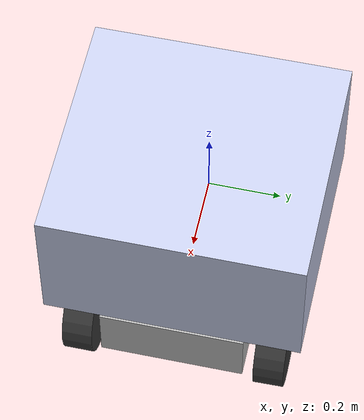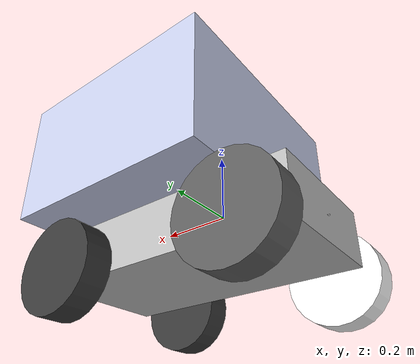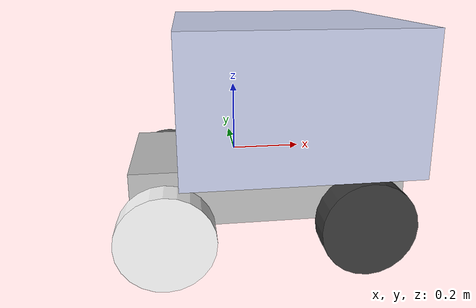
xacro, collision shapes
<?xml version="1.0"?>
<robot xmlns:xacro="http://www.ros.org/wiki/xacro" name="hunter_se_with_box">
    <xacro:include filename="$(find hunter_se_description)/urdf/hunter_se_description.xacro" />
  <link
    name="box_link">
    <inertial>
      <origin
        xyz="-0.087983 0.019545 0.12035"
        rpy="0 0 0" />
      <mass
        value="6.5899" />
      <inertia
        ixx="0.038097"
        ixy="6.3863E-06"
        ixz="0.0023813"
        iyy="0.05534"
        iyz="0.00081482"
        izz="0.069781" />
    </inertial>
    <visual>
      <origin
        xyz="0 0 0"
        rpy="0 0 0" />
      <geometry>
        <mesh
          filename="package://hunter_se_description/meshes/box_link.STL" />
      </geometry>
      <material
        name="">
        <color
          rgba="0.79216 0.81961 0.93333 1" />
      </material>
    </visual>
    <collision>
      <origin
        xyz="-0.048 0 0.178"
        rpy="0 0 0" />
      <geometry>
          <box size="0.6378 0.689 0.3851" />
      </geometry>
    </collision>
  </link>

    <joint name="box_jiont" type="fixed">
        <origin xyz="0.2 0.0 0.02" rpy="0.0 0.0 0.0"/>
        <parent link="base_link"/>
        <child link="box_link"/>
        <axis xyz="0.0 0.0 0.0"/>
    </joint>

</robot>

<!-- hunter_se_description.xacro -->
<robot
  name="hunter_se_description">
  <link
    name="base_link">
    <inertial>
      <origin
        xyz="0.0374140021041951 -0.000373005187591258 -0.0771282894414029"
        rpy="0 0 0" />
      <mass
        value="35" />
      <inertia
        ixx="0.123215829336501"
        ixy="-2.51201031615063E-06"
        ixz="0.00480100638469038"
        iyy="0.219144715482931"
        iyz="-1.0329581476775E-05"
        izz="0.313606030126045" />
    </inertial>
    <visual>
      <origin
        xyz="0 0 0"
        rpy="0 0 0" />
      <geometry>
        <mesh
          filename="package://hunter_se_description/meshes/base_link.STL" />
      </geometry>
      <material
        name="">
        <color
          rgba="0.752941176470588 0.752941176470588 0.752941176470588 1" />
      </material>
    </visual>
    <collision>
      <origin
        xyz="0.085 0 -0.08"
        rpy="0 0 0" />
      <geometry>
        <box size="0.7777 0.386 0.1615" />
      </geometry>
    </collision>
  </link>
  <link
    name="fr_steer_left_link">
    <inertial>
      <origin
        xyz="-0.0002776492198312 0.0163539773588368 4.97346169803237E-09"
        rpy="0 0 0" />
      <mass
        value="1" />
      <inertia
        ixx="0.0222"
        ixy="0.0"
        ixz="0.0"
        iyy="0.0222"
        iyz="0.0"
        izz="0.0378075" />
    </inertial>
    <visual>
      <origin
        xyz="0 0 0"
        rpy="0 0 0" />
      <geometry>
        <box size="0.001 0.001 0.001"/>
      </geometry>
      <material
        name="">
        <color
          rgba="0.223529411764706 0.223529411764706 0.223529411764706 1" />
      </material>
    </visual>
    <collision>
      <origin
        xyz="0 0 0"
        rpy="0 0 0" />
      <geometry>
        <box size="0.001 0.001 0.001"/>
      </geometry>
    </collision>
  </link>
  <joint
    name="fr_steer_left_joint"
    type="revolute">
    <origin
      xyz="0.34058 0.24619 -0.1535"
      rpy="0 0 0" />
    <parent
      link="base_link" />
    <child
      link="fr_steer_left_link" />
    <axis
      xyz="0 0 1" />
    <limit
      lower="-0.69"
      upper="0.69"
      effort="0"
      velocity="0" />
  </joint>
  <link
    name="fr_left_link">
    <inertial>
      <origin
        xyz="-3.5837499634539E-10 4.97346158701006E-09 -0.016356334080185"
        rpy="0 0 0" />
      <mass
        value="1" />
      <inertia
        ixx="0.0222"
        ixy="0.0"
        ixz="0.0"
        iyy="0.0222"
        iyz="0.0"
        izz="0.0378075" />
    </inertial>
    <visual>
      <origin
        xyz="0 0 0"
        rpy="0 0 0" />
      <geometry>
        <mesh
          filename="package://hunter_se_description/meshes/fr_left_link.STL" />
      </geometry>
      <material
        name="">
        <color
          rgba="0.223529411764706 0.223529411764706 0.223529411764706 1" />
      </material>
    </visual>
    <collision>
			<origin rpy="0 0 0" xyz="0 0 -0.014"/>
		  	<geometry>
		  		<cylinder length="0.08168" radius="0.1349"/>
		  	</geometry>
        <surface>
            <friction>
              <ode>
<mu>1.000000</mu>
<mu2>1.000000</mu2>
                <fdir1>0.000000 0.000000 0.000000</fdir1>
                <slip1>0.000000</slip1>
                <slip2>0.000000</slip2>
              </ode>
            </friction>
            <bounce>
              <restitution_coefficient>0.000000</restitution_coefficient>
              <threshold>100000.000000</threshold>
            </bounce>
            <contact>
              <ode>
                <soft_cfm>0.000000</soft_cfm>
                <soft_erp>0.200000</soft_erp>
                <kp>1000000000.000000</kp>
                <kd>1.000000</kd>
                <max_vel>100.000000</max_vel>
                <min_depth>0.001000</min_depth>
              </ode>
            </contact>
          </surface>
		</collision>
  </link>
  <joint
    name="fr_left_joint"
    type="continuous">
    <origin
      xyz="0 0 0"
      rpy="1.5708 0 0.016976" />
    <parent
      link="fr_steer_left_link" />
    <child
      link="fr_left_link" />
    <axis
      xyz="0 0 -1" />
  </joint>
  <link
    name="fr_steer_right_link">
    <inertial>
      <origin
        xyz="0.000274981985673328 -0.0163540222836661 -3.24802407192237E-11"
        rpy="0 0 0" />
      <mass
        value="1" />
      <inertia
        ixx="0.0222"
        ixy="0.0"
        ixz="0.0"
        iyy="0.0222"
        iyz="0.0"
        izz="0.0378075" />
    </inertial>
    <visual>
      <origin
        xyz="0 0 0"
        rpy="0 0 0" />
      <geometry>
        <box size="0.001 0.001 0.001"/>
      </geometry>
      <material
        name="">
        <color
          rgba="1 1 1 1" />
      </material>
    </visual>
    <collision>
      <origin
        xyz="0 0 0"
        rpy="0 0 0" />
      <geometry>
        <box size="0.001 0.001 0.001"/>
      </geometry>
    </collision>
  </link>
  <joint
    name="fr_steer_right_joint"
    type="revolute">
    <origin
      xyz="0.34219 -0.24619 -0.1535"
      rpy="0 0 0" />
    <parent
      link="base_link" />
    <child
      link="fr_steer_right_link" />
    <axis
      xyz="0 0 1" />
    <limit
      lower="-0.69"
      upper="0.69"
      effort="0"
      velocity="0" />
  </joint>
  <link
    name="fr_right_link">
    <inertial>
      <origin
        xyz="0.00027498198567355 3.24801296969213E-11 -0.0163540222836661"
        rpy="0 0 0" />
      <mass
        value="1" />
      <inertia
        ixx="0.0222"
        ixy="0.0"
        ixz="0.0"
        iyy="0.0222"
        iyz="0.0"
        izz="0.0378075" />
    </inertial>
    <visual>
      <origin
        xyz="0 0 0"
        rpy="0 0 0" />
      <geometry>
        <mesh
          filename="package://hunter_se_description/meshes/fr_right_link.STL" />
      </geometry>
      <material
        name="">
        <color
          rgba="0.223529411764706 0.223529411764706 0.223529411764706 1" />
      </material>
    </visual>
        <collision>
			<origin rpy="0 0 0" xyz="0 0 -0.014"/>
		  	<geometry>
		  		<cylinder length="0.08168" radius="0.1349"/>
		  	</geometry>
               <surface>
            <friction>
              <ode>
<mu>1.000000</mu>
<mu2>1.000000</mu2>
                <fdir1>0.000000 0.000000 0.000000</fdir1>
                <slip1>0.000000</slip1>
                <slip2>0.000000</slip2>
              </ode>
            </friction>
            <bounce>
              <restitution_coefficient>0.000000</restitution_coefficient>
              <threshold>100000.000000</threshold>
            </bounce>
            <contact>
              <ode>
                <soft_cfm>0.000000</soft_cfm>
                <soft_erp>0.200000</soft_erp>
                <kp>1000000000.000000</kp>
                <kd>1.000000</kd>
                <max_vel>100.000000</max_vel>
                <min_depth>0.001000</min_depth>
              </ode>
            </contact>
          </surface>
		</collision>
  </link>
  <joint
    name="fr_right_joint"
    type="continuous">
    <origin
      xyz="0 0 0"
      rpy="-1.5708 0 0" />
    <parent
      link="fr_steer_right_link" />
    <child
      link="fr_right_link" />
    <axis
      xyz="0 0 1" />
  </joint>

  <link
    name="re_left_link">
    <inertial>
      <origin
        xyz="1.245E-09 1.7252E-06 -0.010284"
        rpy="0 0 0" />
      <mass
        value="1" />
      <inertia
        ixx="0.0222"
        ixy="0.0"
        ixz="0.0"
        iyy="0.0222"
        iyz="0.0"
        izz="0.0378075" />
    </inertial>
    <visual>
      <origin
        xyz="0 0 0"
        rpy="0 0 0" />
      <geometry>
        <mesh
          filename="package://hunter_se_description/meshes/re_left_link.STL" />
      </geometry>
      <material
        name="">
        <color
          rgba="0.37647 0.37647 0.37647 1" />
      </material>

    </visual>
        <collision>
			<origin rpy="0 0 0" xyz="0 0 -0.012"/>
		  	<geometry>
		  		<cylinder length="0.08168" radius="0.1349"/>
		  	</geometry>
        <surface>
            <friction>
              <ode>
<mu>1.000000</mu>
<mu2>1.000000</mu2>
                <fdir1>0.000000 0.000000 0.000000</fdir1>
                <slip1>0.000000</slip1>
                <slip2>0.000000</slip2>
              </ode>
            </friction>
            <bounce>
              <restitution_coefficient>0.000000</restitution_coefficient>
              <threshold>100000.000000</threshold>
            </bounce>
            <contact>
              <ode>
                <soft_cfm>0.000000</soft_cfm>
                <soft_erp>0.200000</soft_erp>
                <kp>1000000000.000000</kp>
                <kd>1.000000</kd>
                <max_vel>100.000000</max_vel>
                <min_depth>0.001000</min_depth>
              </ode>
            </contact>
          </surface>
		</collision>
  </link>
  <joint
    name="re_left_joint"
    type="continuous">
    <origin
      xyz="-0.2078 0.252 -0.158"
      rpy="1.5708 0 0" />
    <parent
      link="base_link" />
    <child
      link="re_left_link" />
    <axis
      xyz="0 0 -1" />
  </joint>
  <link
    name="re_right_link">
    <inertial>
      <origin
        xyz="0 0 0"
        rpy="0 0 0" />
      <mass
        value="1" />
      <inertia
        ixx="0.0222"
        ixy="0.0"
        ixz="0.0"
        iyy="0.0222"
        iyz="0.0"
        izz="0.0378075" />
    </inertial>
    <visual>
      <origin
        xyz="0 0 0"
        rpy="0 0 0" />
      <geometry>
        <mesh
          filename="package://hunter_se_description/meshes/re_right_link.STL" />
      </geometry>
      <material
        name="">
        <color
          rgba="1 1 1 1" />
      </material>
    </visual>
        <collision>
			<origin rpy="0 0 0" xyz="0 0 -0.012"/>
		  	<geometry>
		  		<cylinder length="0.08168" radius="0.1349"/>
		  	</geometry>
        <surface>
            <friction>
              <ode>
<mu>1.000000</mu>
<mu2>1.000000</mu2>
                <fdir1>0.000000 0.000000 0.000000</fdir1>
                <slip1>0.000000</slip1>
                <slip2>0.000000</slip2>
              </ode>
            </friction>
            <bounce>
              <restitution_coefficient>0.000000</restitution_coefficient>
              <threshold>100000.000000</threshold>
            </bounce>
            <contact>
              <ode>
                <soft_cfm>0.000000</soft_cfm>
                <soft_erp>0.200000</soft_erp>
                <kp>1000000000.000000</kp>
                <kd>1.000000</kd>
                <max_vel>100.000000</max_vel>
                <min_depth>0.001000</min_depth>
              </ode>
            </contact>
          </surface>
		</collision>
  </link>
  <joint
    name="re_right_joint"
    type="continuous">
    <origin
      xyz="-0.2078 -0.252 -0.158"
      rpy="-1.5708 0 0" />
    <parent
      link="base_link" />
    <child
      link="re_right_link" />
    <axis
      xyz="0 0 1" />
  </joint>

  <link
    name="front_steer_link">
    <inertial>
      <origin
        xyz="0.049836 8.1046E-15 0.017912"
        rpy="0 0 0" />
      <mass
        value="0.0049179" />
      <inertia
        ixx="1.6846E-07"
        ixy="7.6396E-23"
        ixz="-1.0974E-08"
        iyy="7.549E-07"
        iyz="-1.8957E-22"
        izz="7.334E-07" />
    </inertial>
    <visual>
      <origin
        xyz="0 0 0"
        rpy="0 0 0" />
      <geometry>
      <cylinder length="0.001" radius="0.005"/>
      </geometry>
      <material
        name="">
        <color
          rgba="0.79216 0.81961 0.93333 1" />
      </material>
    </visual>
    <collision>
      <origin
        xyz="0 0 0"
        rpy="0 0 0" />
      <geometry>
      <cylinder length="0.001" radius="0.005"/>
      </geometry>
    </collision>
  </link>
  <joint
    name="front_steer_joint"
    type="revolute">
    <origin
      xyz="0.40792 -1.1431E-05 -0.085581"
      rpy="0 0 0" />
    <parent
      link="base_link" />
    <child
      link="front_steer_link" />
    <axis
      xyz="0 0 1" />
    <limit
      lower="-0.72"
      upper="0.72"
      effort="0"
      velocity="0" />
  </joint>
  <link
    name="rear_wheel_link">
    <inertial>
      <origin
        xyz="-0.02 0.0031269 -0.12735"
        rpy="0 0 0" />
      <mass
        value="0.0049179" />
      <inertia
        ixx="1.1821E-06"
        ixy="9.6965E-13"
        ixz="-3.1553E-12"
        iyy="9.5276E-07"
        iyz="1.2428E-08"
        izz="1.0913E-06" />
    </inertial>
    <visual>
      <origin
        xyz="0 0 0"
        rpy="0 0 0" />
      <geometry>
      <cylinder length="0.001" radius="0.005"/>
      </geometry>
      <material
        name="">
        <color
          rgba="1 1 1 1" />
      </material>
    </visual>
    <collision>
      <origin
        xyz="0 0 0"
        rpy="0 0 0" />
      <geometry>
      <cylinder length="0.001" radius="0.005"/>
      </geometry>
    </collision>
  </link>
  <joint
    name="rear_wheel_joint"
    type="continuous">
    <origin
      xyz="-0.30408 -1.1431E-05 -0.085581"
      rpy="0.0032313 0 0" />
    <parent
      link="base_link" />
    <child
      link="rear_wheel_link" />
    <axis
      xyz="0 0 1" />
  </joint>

  <gazebo>
    <plugin name="gazebo_ros_control" filename="libgazebo_ros_control.so">
      <robotSimType>steer_bot_hardware_gazebo/SteerBotHardwareGazebo</robotSimType>
      <legacyModeNS>false</legacyModeNS>
    </plugin>
  </gazebo>

<!-- gazebo -->

<!-- gazebo -->

</robot>
